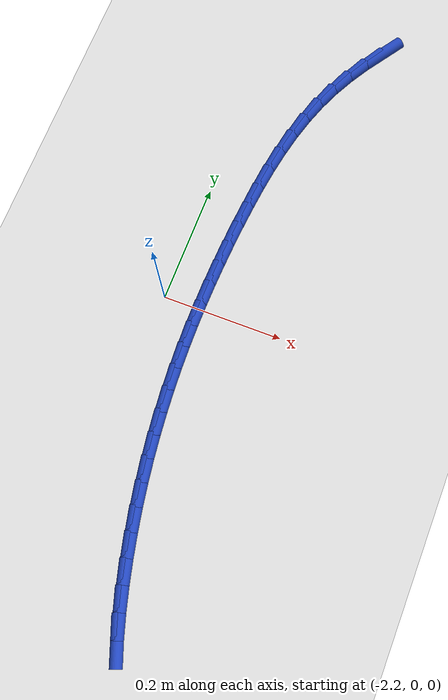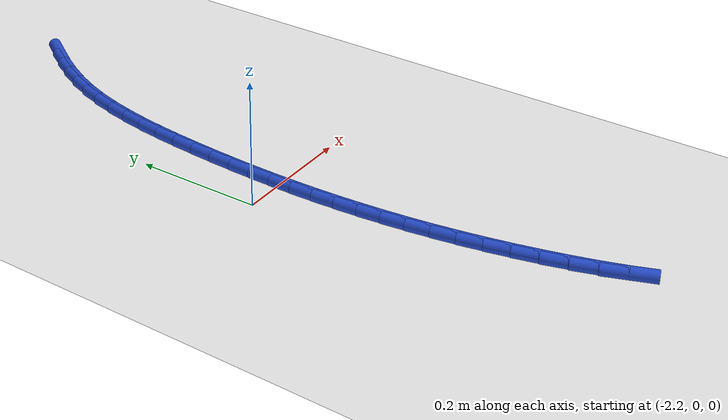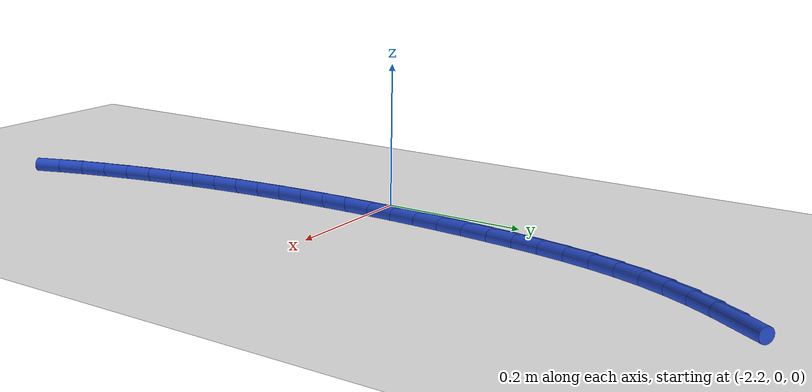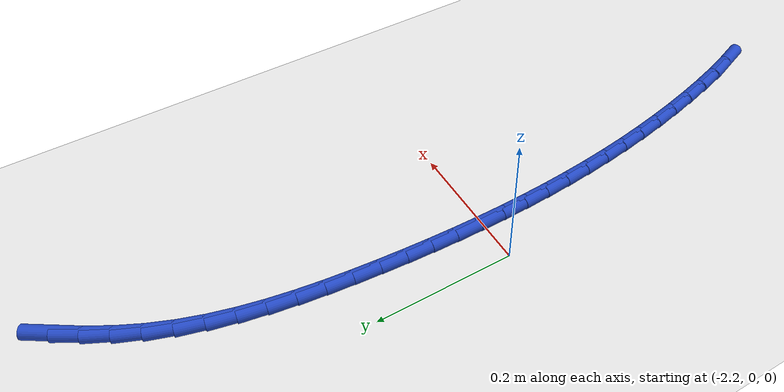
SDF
<sdf version="1.6">
 <world name="default">
  <model name="ground_plane">
   <static>1</static>
   <link name="link">
    <collision name="collision">
     <geometry><plane><normal>0 0 1</normal><size>100 100</size></plane></geometry>
     <surface><friction><ode><mu>100</mu><mu2>50</mu2></ode></friction></surface>
    </collision>
    <visual name="visual">
     <cast_shadows>0</cast_shadows>
     <geometry><plane><normal>0 0 1</normal><size>100 100</size></plane></geometry>
     <material>
      <script><uri>file://media/materials/scripts/gazebo.material</uri><name>Gazebo/WhiteGlow</name></script>
     </material>
    </visual>
   </link>
  </model>
  <model name="line">
   <link name="link_74">
    <pose>-2.014537212765567 0.5452159430998244 0.01 0 1.57 0.983920061996239</pose>
    <collision name="collision">
     <geometry><cylinder><radius>0.01</radius><length>0.08</length></cylinder></geometry>
    </collision>
    <visual name="visual">
     <material>
      <script><name>Gazebo/Blue</name><uri>file://media/materials/scripts/gazebo.material</uri></script>
     </material>
     <geometry><cylinder><radius>0.01</radius><length>0.08</length></cylinder></geometry>
    </visual>
   </link>
   <link name="link_75">
    <pose>-2.035170758852858 0.5141899649322588 0.01 0 1.57 1.0415674868890346</pose>
    <collision name="collision">
     <geometry><cylinder><radius>0.01</radius><length>0.08</length></cylinder></geometry>
    </collision>
    <visual name="visual">
     <material>
      <script><name>Gazebo/Blue</name><uri>file://media/materials/scripts/gazebo.material</uri></script>
     </material>
     <geometry><cylinder><radius>0.01</radius><length>0.08</length></cylinder></geometry>
    </visual>
   </link>
   <link name="link_76">
    <pose>-2.0538806459292513 0.48220077659572563 0.01 0 1.57 1.1049720393078946</pose>
    <collision name="collision">
     <geometry><cylinder><radius>0.01</radius><length>0.08</length></cylinder></geometry>
    </collision>
    <visual name="visual">
     <material>
      <script><name>Gazebo/Blue</name><uri>file://media/materials/scripts/gazebo.material</uri></script>
     </material>
     <geometry><cylinder><radius>0.01</radius><length>0.08</length></cylinder></geometry>
    </visual>
   </link>
   <link name="link_77">
    <pose>-2.070477240927374 0.4491874312120952 0.01 0 1.57 1.1738161145962491</pose>
    <collision name="collision">
     <geometry><cylinder><radius>0.01</radius><length>0.08</length></cylinder></geometry>
    </collision>
    <visual name="visual">
     <material>
      <script><name>Gazebo/Blue</name><uri>file://media/materials/scripts/gazebo.material</uri></script>
     </material>
     <geometry><cylinder><radius>0.01</radius><length>0.08</length></cylinder></geometry>
    </visual>
   </link>
   <link name="link_78">
    <pose>-2.084772296178805 0.4150897353675155 0.01 0 1.57 1.2431670080887822</pose>
    <collision name="collision">
     <geometry><cylinder><radius>0.01</radius><length>0.08</length></cylinder></geometry>
    </collision>
    <visual name="visual">
     <material>
      <script><name>Gazebo/Blue</name><uri>file://media/materials/scripts/gazebo.material</uri></script>
     </material>
     <geometry><cylinder><radius>0.01</radius><length>0.08</length></cylinder></geometry>
    </visual>
   </link>
   <link name="link_79">
    <pose>-2.09672340651044 0.3799268136741933 0.01 0 1.57 1.3044881576279976</pose>
    <collision name="collision">
     <geometry><cylinder><radius>0.01</radius><length>0.08</length></cylinder></geometry>
    </collision>
    <visual name="visual">
     <material>
      <script><name>Gazebo/Blue</name><uri>file://media/materials/scripts/gazebo.material</uri></script>
     </material>
     <geometry><cylinder><radius>0.01</radius><length>0.08</length></cylinder></geometry>
    </visual>
   </link>
   <link name="link_80">
    <pose>-2.106560391029498 0.34386584287765926 0.01 0 1.57 1.3570533538705571</pose>
    <collision name="collision">
     <geometry><cylinder><radius>0.01</radius><length>0.08</length></cylinder></geometry>
    </collision>
    <visual name="visual">
     <material>
      <script><name>Gazebo/Blue</name><uri>file://media/materials/scripts/gazebo.material</uri></script>
     </material>
     <geometry><cylinder><radius>0.01</radius><length>0.08</length></cylinder></geometry>
    </visual>
   </link>
   <link name="link_81">
    <pose>-2.1145428602082874 0.30709020208111504 0.01 0 1.57 1.401224024011203</pose>
    <collision name="collision">
     <geometry><cylinder><radius>0.01</radius><length>0.08</length></cylinder></geometry>
    </collision>
    <visual name="visual">
     <material>
      <script><name>Gazebo/Blue</name><uri>file://media/materials/scripts/gazebo.material</uri></script>
     </material>
     <geometry><cylinder><radius>0.01</radius><length>0.08</length></cylinder></geometry>
    </visual>
   </link>
   <link name="link_82">
    <pose>-2.1209304245191163 0.2697832703877607 0.01 0 1.57 1.4374197132486903</pose>
    <collision name="collision">
     <geometry><cylinder><radius>0.01</radius><length>0.08</length></cylinder></geometry>
    </collision>
    <visual name="visual">
     <material>
      <script><name>Gazebo/Blue</name><uri>file://media/materials/scripts/gazebo.material</uri></script>
     </material>
     <geometry><cylinder><radius>0.01</radius><length>0.08</length></cylinder></geometry>
    </visual>
   </link>
   <link name="link_83">
    <pose>-2.1259826944342928 0.23212842690079635 0.01 0 1.57 1.4660344824291773</pose>
    <collision name="collision">
     <geometry><cylinder><radius>0.01</radius><length>0.08</length></cylinder></geometry>
    </collision>
    <visual name="visual">
     <material>
      <script><name>Gazebo/Blue</name><uri>file://media/materials/scripts/gazebo.material</uri></script>
     </material>
     <geometry><cylinder><radius>0.01</radius><length>0.08</length></cylinder></geometry>
    </visual>
   </link>
   <link name="link_84">
    <pose>-2.1299592804261254 0.19430905072342347 0.01 0 1.57 1.4873805360537362</pose>
    <collision name="collision">
     <geometry><cylinder><radius>0.01</radius><length>0.08</length></cylinder></geometry>
    </collision>
    <visual name="visual">
     <material>
      <script><name>Gazebo/Blue</name><uri>file://media/materials/scripts/gazebo.material</uri></script>
     </material>
     <geometry><cylinder><radius>0.01</radius><length>0.08</length></cylinder></geometry>
    </visual>
   </link>
   <link name="link_85">
    <pose>-2.1331197763736007 0.15650850878014905 0.01 0 1.57 1.5032919670523313</pose>
    <collision name="collision">
     <geometry><cylinder><radius>0.01</radius><length>0.08</length></cylinder></geometry>
    </collision>
    <visual name="visual">
     <material>
      <script><name>Gazebo/Blue</name><uri>file://media/materials/scripts/gazebo.material</uri></script>
     </material>
     <geometry><cylinder><radius>0.01</radius><length>0.08</length></cylinder></geometry>
    </visual>
   </link>
   <link name="link_86">
    <pose>-2.1356646255707115 0.11886675433653927 0.01 0 1.57 1.5191488177143295</pose>
    <collision name="collision">
     <geometry><cylinder><radius>0.01</radius><length>0.08</length></cylinder></geometry>
    </collision>
    <visual name="visual">
     <material>
      <script><name>Gazebo/Blue</name><uri>file://media/materials/scripts/gazebo.material</uri></script>
     </material>
     <geometry><cylinder><radius>0.01</radius><length>0.08</length></cylinder></geometry>
    </visual>
   </link>
   <link name="link_87">
    <pose>-2.137602299440423 0.08138284262078128 0.01 0 1.57 1.5360071561581907</pose>
    <collision name="collision">
     <geometry><cylinder><radius>0.01</radius><length>0.08</length></cylinder></geometry>
    </collision>
    <visual name="visual">
     <material>
      <script><name>Gazebo/Blue</name><uri>file://media/materials/scripts/gazebo.material</uri></script>
     </material>
     <geometry><cylinder><radius>0.01</radius><length>0.08</length></cylinder></geometry>
    </visual>
   </link>
   <link name="link_88">
    <pose>-2.138902392494824 0.04402729509508701 0.01 0 1.57 1.5538316799831382</pose>
    <collision name="collision">
     <geometry><cylinder><radius>0.01</radius><length>0.08</length></cylinder></geometry>
    </collision>
    <visual name="visual">
     <material>
      <script><name>Gazebo/Blue</name><uri>file://media/materials/scripts/gazebo.material</uri></script>
     </material>
     <geometry><cylinder><radius>0.01</radius><length>0.08</length></cylinder></geometry>
    </visual>
   </link>
   <link name="link_89">
    <pose>-2.139534499246003 0.006770633221669615 0.01 0 1.57 -1.5690138620718843</pose>
    <collision name="collision">
     <geometry><cylinder><radius>0.01</radius><length>0.08</length></cylinder></geometry>
    </collision>
    <visual name="visual">
     <material>
      <script><name>Gazebo/Blue</name><uri>file://media/materials/scripts/gazebo.material</uri></script>
     </material>
     <geometry><cylinder><radius>0.01</radius><length>0.08</length></cylinder></geometry>
    </visual>
   </link>
   <link name="link_90">
    <pose>-2.1394682142060497 -0.030416621537258826 0.01 0 1.57 -1.5493961071146731</pose>
    <collision name="collision">
     <geometry><cylinder><radius>0.01</radius><length>0.08</length></cylinder></geometry>
    </collision>
    <visual name="visual">
     <material>
      <script><name>Gazebo/Blue</name><uri>file://media/materials/scripts/gazebo.material</uri></script>
     </material>
     <geometry><cylinder><radius>0.01</radius><length>0.08</length></cylinder></geometry>
    </visual>
   </link>
   <link name="link_91">
    <pose>-2.138673131887053 -0.06756394771948598 0.01 0 1.57 -1.528967862156448</pose>
    <collision name="collision">
     <geometry><cylinder><radius>0.01</radius><length>0.08</length></cylinder></geometry>
    </collision>
    <visual name="visual">
     <material>
      <script><name>Gazebo/Blue</name><uri>file://media/materials/scripts/gazebo.material</uri></script>
     </material>
     <geometry><cylinder><radius>0.01</radius><length>0.08</length></cylinder></geometry>
    </visual>
   </link>
   <link name="link_92">
    <pose>-2.1371188468011013 -0.10470082386280008 0.01 0 1.57 -1.5077971439697528</pose>
    <collision name="collision">
     <geometry><cylinder><radius>0.01</radius><length>0.08</length></cylinder></geometry>
    </collision>
    <visual name="visual">
     <material>
      <script><name>Gazebo/Blue</name><uri>file://media/materials/scripts/gazebo.material</uri></script>
     </material>
     <geometry><cylinder><radius>0.01</radius><length>0.08</length></cylinder></geometry>
    </visual>
   </link>
   <link name="link_93">
    <pose>-2.134774953460285 -0.14185672850498726 0.01 0 1.57 -1.4859592674523578</pose>
    <collision name="collision">
     <geometry><cylinder><radius>0.01</radius><length>0.08</length></cylinder></geometry>
    </collision>
    <visual name="visual">
     <material>
      <script><name>Gazebo/Blue</name><uri>file://media/materials/scripts/gazebo.material</uri></script>
     </material>
     <geometry><cylinder><radius>0.01</radius><length>0.08</length></cylinder></geometry>
    </visual>
   </link>
   <link name="link_94">
    <pose>-2.1316110463766917 -0.1790611401838359 0.01 0 1.57 -1.4635360602392087</pose>
    <collision name="collision">
     <geometry><cylinder><radius>0.01</radius><length>0.08</length></cylinder></geometry>
    </collision>
    <visual name="visual">
     <material>
      <script><name>Gazebo/Blue</name><uri>file://media/materials/scripts/gazebo.material</uri></script>
     </material>
     <geometry><cylinder><radius>0.01</radius><length>0.08</length></cylinder></geometry>
    </visual>
   </link>
   <link name="link_95">
    <pose>-2.127596720062411 -0.21634353743713353 0.01 0 1.57 -1.4406148683069464</pose>
    <collision name="collision">
     <geometry><cylinder><radius>0.01</radius><length>0.08</length></cylinder></geometry>
    </collision>
    <visual name="visual">
     <material>
      <script><name>Gazebo/Blue</name><uri>file://media/materials/scripts/gazebo.material</uri></script>
     </material>
     <geometry><cylinder><radius>0.01</radius><length>0.08</length></cylinder></geometry>
    </visual>
   </link>
   <link name="link_96">
    <pose>-2.122701569029532 -0.2537333988026677 0.01 0 1.57 -1.4172873761455813</pose>
    <collision name="collision">
     <geometry><cylinder><radius>0.01</radius><length>0.08</length></cylinder></geometry>
    </collision>
    <visual name="visual">
     <material>
      <script><name>Gazebo/Blue</name><uri>file://media/materials/scripts/gazebo.material</uri></script>
     </material>
     <geometry><cylinder><radius>0.01</radius><length>0.08</length></cylinder></geometry>
    </visual>
   </link>
   <link name="link_97">
    <pose>-2.116895187790144 -0.2912602028182262 0.01 0 1.57 -1.393648276924561</pose>
    <collision name="collision">
     <geometry><cylinder><radius>0.01</radius><length>0.08</length></cylinder></geometry>
    </collision>
    <visual name="visual">
     <material>
      <script><name>Gazebo/Blue</name><uri>file://media/materials/scripts/gazebo.material</uri></script>
     </material>
     <geometry><cylinder><radius>0.01</radius><length>0.08</length></cylinder></geometry>
    </visual>
   </link>
   <link name="link_98">
    <pose>-2.110147170856335 -0.3289534280215971 0.01 0 1.57 -1.369793838205199</pose>
    <collision name="collision">
     <geometry><cylinder><radius>0.01</radius><length>0.08</length></cylinder></geometry>
    </collision>
    <visual name="visual">
     <material>
      <script><name>Gazebo/Blue</name><uri>file://media/materials/scripts/gazebo.material</uri></script>
     </material>
     <geometry><cylinder><radius>0.01</radius><length>0.08</length></cylinder></geometry>
    </visual>
   </link>
   <link name="link_99">
    <pose>-2.1024271127401946 -0.3668425529505667 0.01 0 1.57 -1.3458204160769331</pose>
    <collision name="collision">
     <geometry><cylinder><radius>0.01</radius><length>0.08</length></cylinder></geometry>
    </collision>
    <visual name="visual">
     <material>
      <script><name>Gazebo/Blue</name><uri>file://media/materials/scripts/gazebo.material</uri></script>
     </material>
     <geometry><cylinder><radius>0.01</radius><length>0.08</length></cylinder></geometry>
    </visual>
   </link>
   <link name="link_100">
    <pose>-2.0937046079538124 -0.4049570561429232 0.01 0 1.57 -1.321255779217906</pose>
    <collision name="collision">
     <geometry><cylinder><radius>0.01</radius><length>0.08</length></cylinder></geometry>
    </collision>
    <visual name="visual">
     <material>
      <script><name>Gazebo/Blue</name><uri>file://media/materials/scripts/gazebo.material</uri></script>
     </material>
     <geometry><cylinder><radius>0.01</radius><length>0.08</length></cylinder></geometry>
    </visual>
   </link>
   <link name="link_101">
    <pose>-2.083936274007398 -0.44328640845175393 0.01 0 1.57 -1.292231263376894</pose>
    <collision name="collision">
     <geometry><cylinder><radius>0.01</radius><length>0.08</length></cylinder></geometry>
    </collision>
    <visual name="visual">
     <material>
      <script><name>Gazebo/Blue</name><uri>file://media/materials/scripts/gazebo.material</uri></script>
     </material>
     <geometry><cylinder><radius>0.01</radius><length>0.08</length></cylinder></geometry>
    </visual>
   </link>
   <link name="link_102">
    <pose>-2.072992032932084 -0.4815528013212083 0.01 0 1.57 -1.2566716842969008</pose>
    <collision name="collision">
     <geometry><cylinder><radius>0.01</radius><length>0.08</length></cylinder></geometry>
    </collision>
    <visual name="visual">
     <material>
      <script><name>Gazebo/Blue</name><uri>file://media/materials/scripts/gazebo.material</uri></script>
     </material>
     <geometry><cylinder><radius>0.01</radius><length>0.08</length></cylinder></geometry>
    </visual>
   </link>
   <link name="link_103">
    <pose>-2.060706282843987 -0.5193689070935248 0.01 0 1.57 -1.2137775112378788</pose>
    <collision name="collision">
     <geometry><cylinder><radius>0.01</radius><length>0.08</length></cylinder></geometry>
    </collision>
    <visual name="visual">
     <material>
      <script><name>Gazebo/Blue</name><uri>file://media/materials/scripts/gazebo.material</uri></script>
     </material>
     <geometry><cylinder><radius>0.01</radius><length>0.08</length></cylinder></geometry>
    </visual>
   </link>
  </model>
 </world>
</sdf>
